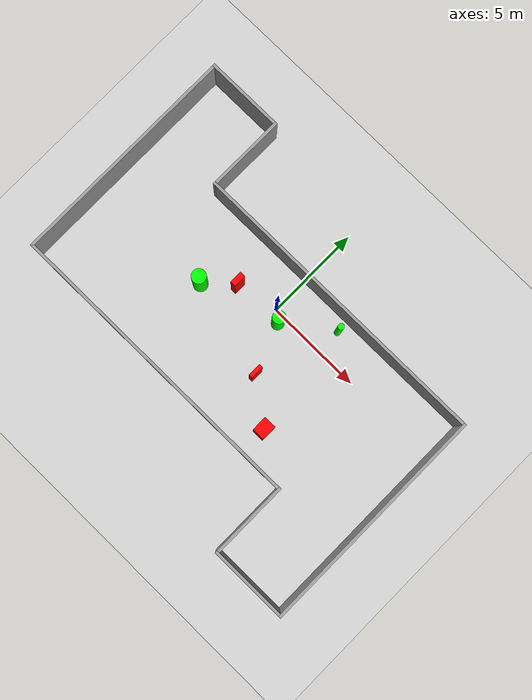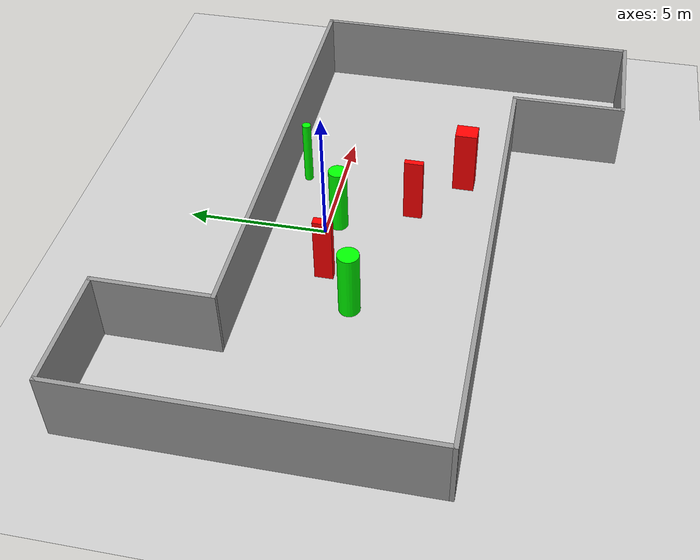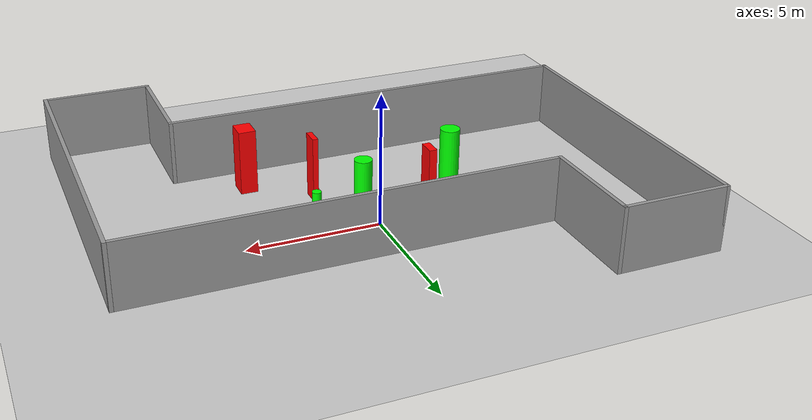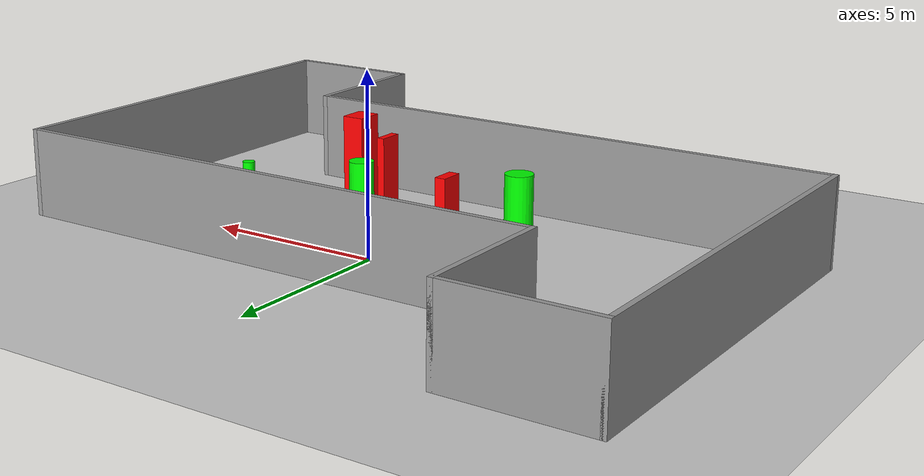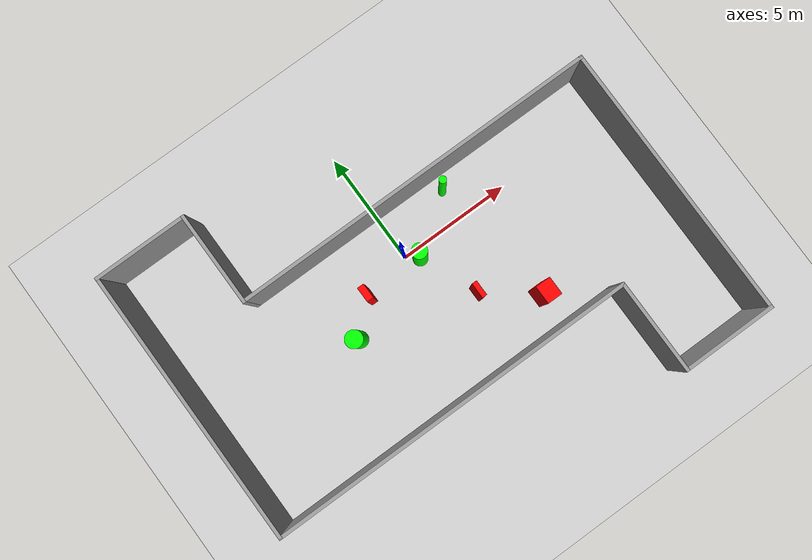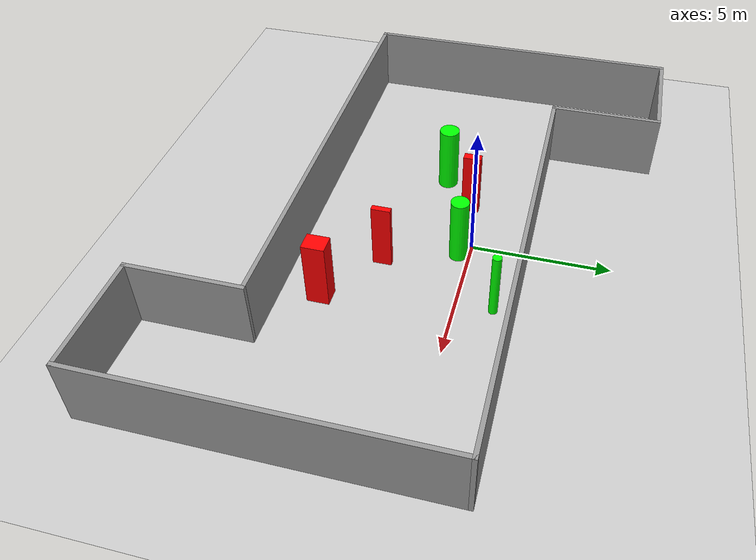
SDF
<sdf version="1.7">
 <world name="default">
  <light name="sun" type="directional">
   <pose>0 0 10 0 -0 0</pose>
   <diffuse>0.8 0.8 0.8 1</diffuse>
   <specular>0.2 0.2 0.2 1</specular>
   <attenuation>
    <range>1000</range>
    <constant>0.9</constant>
    <linear>0.01</linear>
    <quadratic>0.001</quadratic>
   </attenuation>
   <direction>-0.5 0.1 -0.9</direction>
   <spot><inner_angle>0</inner_angle><outer_angle>0</outer_angle><falloff>0</falloff></spot>
  </light>
  <model name="ground_plane">
   <static>1</static>
   <link name="link">
    <collision name="collision">
     <geometry><plane><normal>0 0 1</normal><size>100 100</size></plane></geometry>
     <surface>
      <contact><collide_bitmask>65535</collide_bitmask></contact>
      <friction><ode><mu>100</mu><mu2>50</mu2></ode></friction>
     </surface>
    </collision>
    <visual name="visual">
     <cast_shadows>0</cast_shadows>
     <geometry><plane><normal>0 0 1</normal><size>100 100</size></plane></geometry>
     <material>
      <script><uri>file://media/materials/scripts/gazebo.material</uri><name>Gazebo/Grey</name></script>
     </material>
    </visual>
   </link>
  </model>
  <gravity>0 0 -9.8</gravity>
  <magnetic_field>6e-06 2.3e-05 -4.2e-05</magnetic_field>
  <atmosphere type="adiabatic"/>
  <physics type="ode">
   <max_step_size>0.001</max_step_size>
   <real_time_factor>1</real_time_factor>
   <real_time_update_rate>1000</real_time_update_rate>
  </physics>
  <scene><ambient>0.4 0.4 0.4 1</ambient><background>0.7 0.7 0.7 1</background><shadows>1</shadows></scene>
  <spherical_coordinates>
   <surface_model>EARTH_WGS84</surface_model>
   <latitude_deg>0</latitude_deg>
   <longitude_deg>0</longitude_deg>
   <elevation>0</elevation>
   <heading_deg>0</heading_deg>
  </spherical_coordinates>
  <model name="my_base_walls">
   <link name="Wall_13">
    <collision name="Wall_13_Collision">
     <geometry><box><size>12.15 0.15 2.5</size></box></geometry>
     <pose>0 0 1.25 0 -0 0</pose>
    </collision>
    <visual name="Wall_13_Visual">
     <pose>0 0 1.25 0 -0 0</pose>
     <geometry><box><size>12.15 0.15 2.5</size></box></geometry>
     <material>
      <script><uri>file://media/materials/scripts/gazebo.material</uri><name>Gazebo/Grey</name></script>
      <ambient>1 1 1 1</ambient>
     </material>
     <meta><layer>0</layer></meta>
    </visual>
    <pose>10 -2 0 0 -0 1.5708</pose>
   </link>
   <link name="Wall_15">
    <collision name="Wall_15_Collision">
     <geometry><box><size>16.15 0.15 2.5</size></box></geometry>
     <pose>0 0 1.25 0 -0 0</pose>
    </collision>
    <visual name="Wall_15_Visual">
     <pose>0 0 1.25 0 -0 0</pose>
     <geometry><box><size>16.15 0.15 2.5</size></box></geometry>
     <material>
      <script><uri>file://media/materials/scripts/gazebo.material</uri><name>Gazebo/Grey</name></script>
      <ambient>1 1 1 1</ambient>
     </material>
     <meta><layer>0</layer></meta>
    </visual>
    <pose>2 4 0 0 -0 3.14159</pose>
   </link>
   <link name="Wall_17">
    <collision name="Wall_17_Collision">
     <geometry><box><size>4.15 0.15 2.5</size></box></geometry>
     <pose>0 0 1.25 0 -0 0</pose>
    </collision>
    <visual name="Wall_17_Visual">
     <pose>0 0 1.25 0 -0 0</pose>
     <geometry><box><size>4.15 0.15 2.5</size></box></geometry>
     <material>
      <script><uri>file://media/materials/scripts/gazebo.material</uri><name>Gazebo/Grey</name></script>
      <ambient>1 1 1 1</ambient>
     </material>
     <meta><layer>0</layer></meta>
    </visual>
    <pose>6 -6 0 0 -0 -1.5708</pose>
   </link>
   <link name="Wall_19">
    <collision name="Wall_19_Collision">
     <geometry><box><size>12.15 0.15 2.5</size></box></geometry>
     <pose>0 0 1.25 0 -0 0</pose>
    </collision>
    <visual name="Wall_19_Visual">
     <pose>0 0 1.25 0 -0 0</pose>
     <geometry><box><size>12.15 0.15 2.5</size></box></geometry>
     <material>
      <script><uri>file://media/materials/scripts/gazebo.material</uri><name>Gazebo/Grey</name></script>
      <ambient>1 1 1 1</ambient>
     </material>
     <meta><layer>0</layer></meta>
    </visual>
    <pose>-10 2 0 0 -0 1.5708</pose>
   </link>
   <link name="Wall_21">
    <collision name="Wall_21_Collision">
     <geometry><box><size>4.15 0.15 2.5</size></box></geometry>
     <pose>0 0 1.25 0 -0 0</pose>
    </collision>
    <visual name="Wall_21_Visual">
     <pose>0 0 1.25 0 -0 0</pose>
     <geometry><box><size>4.15 0.15 2.5</size></box></geometry>
     <material>
      <script><uri>file://media/materials/scripts/gazebo.material</uri><name>Gazebo/Grey</name></script>
      <ambient>1 1 1 1</ambient>
     </material>
     <meta><layer>0</layer></meta>
    </visual>
    <pose>-8 8 0 0 -0 0</pose>
   </link>
   <link name="Wall_23">
    <collision name="Wall_23_Collision">
     <geometry><box><size>4.15 0.15 2.5</size></box></geometry>
     <pose>0 0 1.25 0 -0 0</pose>
    </collision>
    <visual name="Wall_23_Visual">
     <pose>0 0 1.25 0 -0 0</pose>
     <geometry><box><size>4.15 0.15 2.5</size></box></geometry>
     <material>
      <script><uri>file://media/materials/scripts/gazebo.material</uri><name>Gazebo/Grey</name></script>
      <ambient>1 1 1 1</ambient>
     </material>
     <meta><layer>0</layer></meta>
    </visual>
    <pose>-6 6 0 0 -0 -1.5708</pose>
   </link>
   <link name="Wall_25">
    <collision name="Wall_25_Collision">
     <geometry><box><size>4.15 0.15 2.5</size></box></geometry>
     <pose>0 0 1.25 0 -0 0</pose>
    </collision>
    <visual name="Wall_25_Visual">
     <pose>0 0 1.25 0 -0 0</pose>
     <geometry><box><size>4.15 0.15 2.5</size></box></geometry>
     <material>
      <script><uri>file://media/materials/scripts/gazebo.material</uri><name>Gazebo/Grey</name></script>
      <ambient>1 1 1 1</ambient>
     </material>
     <meta><layer>0</layer></meta>
    </visual>
    <pose>8 -8 0 0 -0 0</pose>
   </link>
   <link name="Wall_9">
    <collision name="Wall_9_Collision">
     <geometry><box><size>16.15 0.15 2.5</size></box></geometry>
     <pose>0 0 1.25 0 -0 0</pose>
    </collision>
    <visual name="Wall_9_Visual">
     <pose>0 0 1.25 0 -0 0</pose>
     <geometry><box><size>16.15 0.15 2.5</size></box></geometry>
     <material>
      <script><uri>file://media/materials/scripts/gazebo.material</uri><name>Gazebo/Grey</name></script>
      <ambient>1 1 1 1</ambient>
     </material>
     <meta><layer>0</layer></meta>
    </visual>
    <pose>-2 -4 0 0 -0 3.14159</pose>
   </link>
   <static>1</static>
   <pose>-0 -2 0 0 -0 0</pose>
  </model>
  <model name="cylinder1">
   <static>1</static>
   <link name="link">
    <inertial>
     <mass>1</mass>
     <inertia><ixx>0.5</ixx><ixy>0</ixy><ixz>0</ixz><iyy>0.5</iyy><iyz>0</iyz><izz>1</izz></inertia>
    </inertial>
    <collision name="collision">
     <geometry><cylinder><radius>0.15777144552794709</radius><length>2.5</length></cylinder></geometry>
    </collision>
    <visual name="visual">
     <geometry><cylinder><radius>0.15777144552794709</radius><length>2.5</length></cylinder></geometry>
     <material>
      <ambient>0 1 0 1</ambient>
      <diffuse>0 1 0 1</diffuse>
      <specular>0.1 0.1 0.1 1</specular>
      <emissive>0 0 0 0</emissive>
     </material>
    </visual>
   </link>
   <pose>2.848721506924713 1.2980610561864196 1.25 0 0 0</pose>
  </model>
  <model name="cylinder2">
   <static>1</static>
   <link name="link">
    <inertial>
     <mass>1</mass>
     <inertia><ixx>0.5</ixx><ixy>0</ixy><ixz>0</ixz><iyy>0.5</iyy><iyz>0</iyz><izz>1</izz></inertia>
    </inertial>
    <collision name="collision">
     <geometry><cylinder><radius>0.36939404822441213</radius><length>2.5</length></cylinder></geometry>
    </collision>
    <visual name="visual">
     <geometry><cylinder><radius>0.36939404822441213</radius><length>2.5</length></cylinder></geometry>
     <material>
      <ambient>0 1 0 1</ambient>
      <diffuse>0 1 0 1</diffuse>
      <specular>0.1 0.1 0.1 1</specular>
      <emissive>0 0 0 0</emissive>
     </material>
    </visual>
   </link>
   <pose>-3.4718101432110005 -1.635130268005856 1.25 0 0 0</pose>
  </model>
  <model name="cylinder3">
   <static>1</static>
   <link name="link">
    <inertial>
     <mass>1</mass>
     <inertia><ixx>0.5</ixx><ixy>0</ixy><ixz>0</ixz><iyy>0.5</iyy><iyz>0</iyz><izz>1</izz></inertia>
    </inertial>
    <collision name="collision">
     <geometry><cylinder><radius>0.3253788062257839</radius><length>2.5</length></cylinder></geometry>
    </collision>
    <visual name="visual">
     <geometry><cylinder><radius>0.3253788062257839</radius><length>2.5</length></cylinder></geometry>
     <material>
      <ambient>0 1 0 1</ambient>
      <diffuse>0 1 0 1</diffuse>
      <specular>0.1 0.1 0.1 1</specular>
      <emissive>0 0 0 0</emissive>
     </material>
    </visual>
   </link>
   <pose>0.5036215846309737 -0.392606866775294 1.25 0 0 0</pose>
  </model>
  <model name="box1">
   <static>1</static>
   <link name="link">
    <inertial>
     <mass>1</mass>
     <inertia><ixx>0.083</ixx><ixy>0</ixy><ixz>0</ixz><iyy>0.083</iyy><iyz>0</iyz><izz>0.083</izz></inertia>
    </inertial>
    <collision name="collision">
     <geometry><box><size>0.29153166506586176 0.6478041736408776 2.5</size></box></geometry>
    </collision>
    <visual name="visual">
     <geometry><box><size>0.29153166506586176 0.6478041736408776 2.5</size></box></geometry>
     <material>
      <ambient>1 0 0 1</ambient>
      <diffuse>1 0 0 1</diffuse>
      <specular>0.1 0.1 0.1 1</specular>
      <emissive>0 0 0 0</emissive>
     </material>
    </visual>
    <sensor name="my_contact" type="contact">
     <contact><collision>box_collision</collision><topic>__default_topic__</topic></contact>
    </sensor>
   </link>
   <pose>-2.0910259520173726 -0.46760329440806814 1.25 0 0 0</pose>
  </model>
  <model name="box2">
   <static>1</static>
   <link name="link">
    <inertial>
     <mass>1</mass>
     <inertia><ixx>0.083</ixx><ixy>0</ixy><ixz>0</ixz><iyy>0.083</iyy><iyz>0</iyz><izz>0.083</izz></inertia>
    </inertial>
    <collision name="collision">
     <geometry><box><size>0.6501777215353753 0.7921815527098698 2.5</size></box></geometry>
    </collision>
    <visual name="visual">
     <geometry><box><size>0.6501777215353753 0.7921815527098698 2.5</size></box></geometry>
     <material>
      <ambient>1 0 0 1</ambient>
      <diffuse>1 0 0 1</diffuse>
      <specular>0.1 0.1 0.1 1</specular>
      <emissive>0 0 0 0</emissive>
     </material>
    </visual>
    <sensor name="my_contact" type="contact">
     <contact><collision>box_collision</collision><topic>__default_topic__</topic></contact>
    </sensor>
   </link>
   <pose>3.5872175923367333 -4.512089209461923 1.25 0 0 0</pose>
  </model>
  <model name="box3">
   <static>1</static>
   <link name="link">
    <inertial>
     <mass>1</mass>
     <inertia><ixx>0.083</ixx><ixy>0</ixy><ixz>0</ixz><iyy>0.083</iyy><iyz>0</iyz><izz>0.083</izz></inertia>
    </inertial>
    <collision name="collision">
     <geometry><box><size>0.20965094181606958 0.6776747052040244 2.5</size></box></geometry>
    </collision>
    <visual name="visual">
     <geometry><box><size>0.20965094181606958 0.6776747052040244 2.5</size></box></geometry>
     <material>
      <ambient>1 0 0 1</ambient>
      <diffuse>1 0 0 1</diffuse>
      <specular>0.1 0.1 0.1 1</specular>
      <emissive>0 0 0 0</emissive>
     </material>
    </visual>
    <sensor name="my_contact" type="contact">
     <contact><collision>box_collision</collision><topic>__default_topic__</topic></contact>
    </sensor>
   </link>
   <pose>1.4841630531205077 -2.9181113582688196 1.25 0 0 0</pose>
  </model>
 </world>
</sdf>
